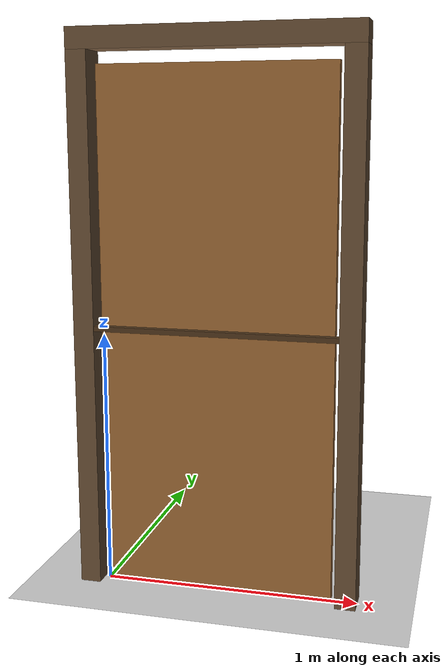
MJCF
<mujoco model="self_closing_door">
  <compiler angle="radian"/>
  <option timestep="0.002" gravity="0 0 -9.81"/>
  <worldbody>
    <light name="sun" pos="0 -3 4" dir="0 0.6 -0.8" directional="true"/>
    <geom name="floor" type="plane" size="5 5 0.1" rgba="0.8 0.8 0.8 1"/>
    <body name="frame" pos="0 0 0">
      <geom name="post_hinge" type="box" pos="-0.06 0 1.03" size="0.04 0.06 1.03" rgba="0.4 0.3 0.2 1"/>
      <geom name="post_latch" type="box" pos="0.96 0 1.03" size="0.04 0.06 1.03" rgba="0.4 0.3 0.2 1"/>
      <geom name="lintel" type="box" pos="0.45 0 2.1" size="0.55 0.06 0.04" rgba="0.4 0.3 0.2 1"/>
      <geom name="stop_strip" type="box" pos="0.45 -0.04 1.03" size="0.47 0.015 0.01" contype="0" conaffinity="0" rgba="0.3 0.2 0.1 1"/>
    </body>
    <body name="door" pos="0 0 0">
      <joint name="hinge" type="hinge" axis="0 0 1" pos="0 0 0" limited="true" range="0 1.6" stiffness="60" springref="0" damping="55" armature="0.1"/>
      <geom name="door_panel" type="box" pos="0.45 0 1.01" size="0.45 0.02 1.0" density="1000" contype="0" conaffinity="0" rgba="0.6 0.4 0.2 1"/>
      <geom name="door_knob" type="sphere" pos="0.8 0.05 1.0" size="0.03" contype="0" conaffinity="0" rgba="0.9 0.8 0.2 1"/>
    </body>
  </worldbody>
  <keyframe>
    <key name="start" qpos="1.4" qvel="0"/>
  </keyframe>
</mujoco>
